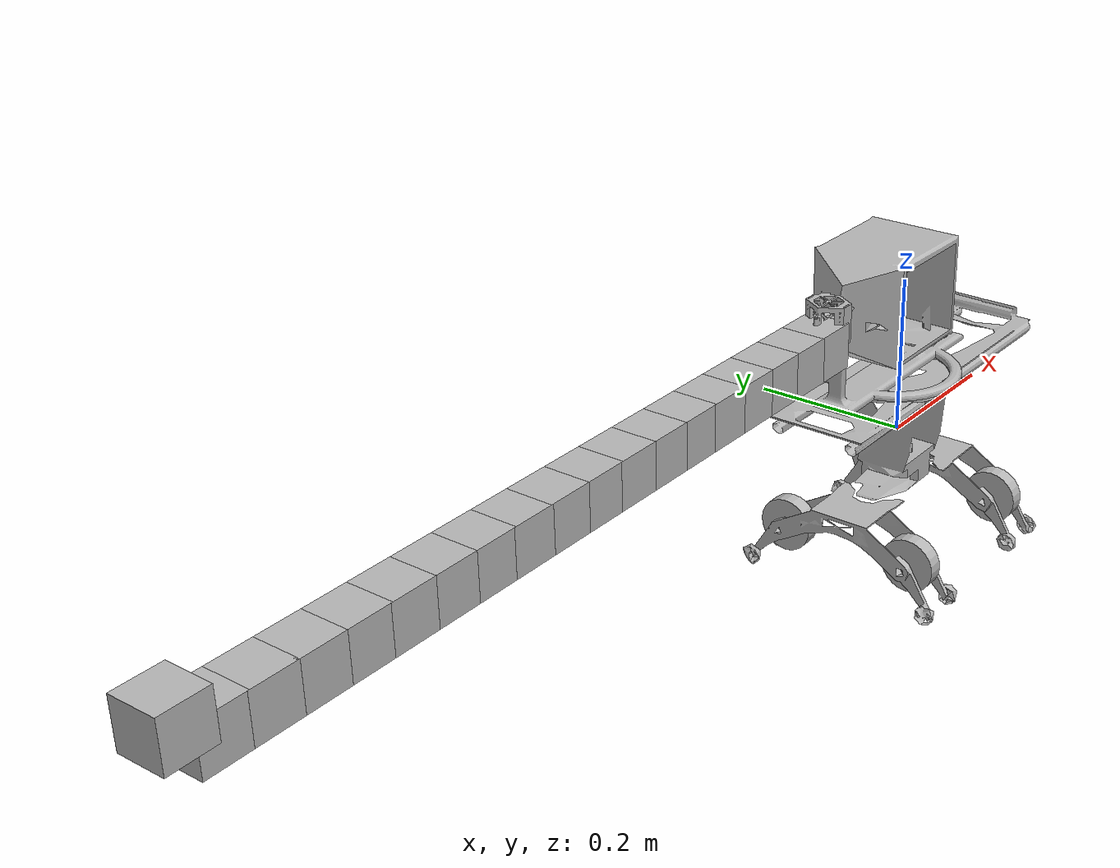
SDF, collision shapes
<sdf version='1.6'>
  <model name='prisma_snake'>
    <link name='uav_link'>
      <pose frame=''>0 0 0 0 -0 0</pose>
      <inertial>
        <pose frame=''>-9.6e-05 0 -0.031948 0 -0 0</pose>
        <mass>5.21</mass>
        <inertia>
          <ixx>0.144682</ixx>
          <ixy>0</ixy>
          <ixz>9.34741e-05</ixz>
          <iyy>0.153347</iyy>
          <iyz>-2.09336e-29</iyz>
          <izz>0.146665</izz>
        </inertia>
      </inertial>
      <collision name='uav_link_collision'>
        <pose frame=''>0 0 0 0 -0 0</pose>
        <geometry>
          <mesh>
            <scale>0.0001 0.0001 0.0001</scale>
            <uri>model://prisma_snake_support_gazebo/meshes/drone_no_prop_no_sup_cu.stl</uri>
          </mesh>
        </geometry>
      </collision>
      <collision name='uav_link_fixed_joint_lump__Rover_1_collision_1'>
        <pose frame=''>-0.3106 0 -0.2455 0 -0 0</pose>
        <geometry>
          <mesh>
            <scale>0.001 0.001 0.001</scale>
            <uri>model://prisma_snake_support_gazebo/meshes/Rover_1_cu.stl</uri>
          </mesh>
        </geometry>
      </collision>
      <collision name='uav_link_fixed_joint_lump__Rover_2_collision_2'>
        <pose frame=''>-0.3106 0 -0.2455 0 -0 0</pose>
        <geometry>
          <mesh>
            <scale>0.001 0.001 0.001</scale>
            <uri>model://prisma_snake_support_gazebo/meshes/Rover_2_cu.stl</uri>
          </mesh>
        </geometry>
      </collision>
      <collision name='uav_link_fixed_joint_lump__base_link_collision_3'>
        <pose frame=''>-0.05 0 0.155 3.14159 -0 1.57079</pose>
        <geometry>
          <mesh>
            <scale>1 1 1</scale>
            <uri>model://prisma_snake_support_gazebo/meshes/base_link.STL</uri>
          </mesh>
        </geometry>
      </collision>
      <visual name='uav_link_visual'>
        <pose frame=''>0 0 0 0 -0 0</pose>
        <geometry>
          <mesh>
            <scale>0.0001 0.0001 0.0001</scale>
            <uri>model://prisma_snake_support_gazebo/meshes/drone_no_prop_no_sup_cu.stl</uri>
          </mesh>
        </geometry>
      </visual>
      <visual name='uav_link_fixed_joint_lump__Rover_1_visual_1'>
        <pose frame=''>-0.3106 0 -0.2455 0 -0 0</pose>
        <geometry>
          <mesh>
            <scale>0.001 0.001 0.001</scale>
            <uri>model://prisma_snake_support_gazebo/meshes/Rover_1_cu.stl</uri>
          </mesh>
        </geometry>
      </visual>
      <visual name='uav_link_fixed_joint_lump__Rover_2_visual_2'>
        <pose frame=''>-0.3106 0 -0.2455 0 -0 0</pose>
        <geometry>
          <mesh>
            <scale>0.001 0.001 0.001</scale>
            <uri>model://prisma_snake_support_gazebo/meshes/Rover_2_cu.stl</uri>
          </mesh>
        </geometry>
      </visual>
      <visual name='uav_link_fixed_joint_lump__base_link_visual_3'>
        <pose frame=''>-0.05 0 0.155 3.14159 -0 1.57079</pose>
        <geometry>
          <mesh>
            <scale>1 1 1</scale>
            <uri>model://prisma_snake_support_gazebo/meshes/base_link.STL</uri>
          </mesh>
        </geometry>
      </visual>
    </link>
    <link name='Wheel_dx_1'>
      <pose frame=''>-0.084 0.087805 -0.113358 0 -0 0</pose>
      <inertial>
        <pose frame=''>-0.025 0 0 1.57 -0 1.57</pose>
        <mass>1.35</mass>
        <inertia>
          <ixx>0.0008</ixx>
          <ixy>0</ixy>
          <ixz>0</ixz>
          <iyy>0.0008</iyy>
          <iyz>0</iyz>
          <izz>0.0008</izz>
        </inertia>
      </inertial>
      <collision name='Wheel_dx_1_collision'>
        <pose frame=''>-0.025 0 0 1.57 -0 1.57</pose>
        <geometry>
          <cylinder>
            <length>0.02</length>
            <radius>0.035</radius>
          </cylinder>
        </geometry>
      </collision>
      <visual name='Wheel_dx_1_visual'>
        <pose frame=''>-0.025 0 0 1.57 -0 1.57</pose>
        <geometry>
          <cylinder>
            <length>0.02</length>
            <radius>0.035</radius>
          </cylinder>
        </geometry>
      </visual>
    </link>
    <joint name='JointWheel_F_dx' type='revolute'>
      <child>Wheel_dx_1</child>
      <parent>uav_link</parent>
      <axis>
        <xyz>-1 0 0</xyz>
        <limit>
          <lower>-1e+16</lower>
          <upper>1e+16</upper>
        </limit>
        <dynamics>
          <spring_reference>0</spring_reference>
          <spring_stiffness>0</spring_stiffness>
        </dynamics>
        <use_parent_model_frame>1</use_parent_model_frame>
      </axis>
    </joint>
    <link name='Wheel_sx_1'>
      <pose frame=''>-0.084 -0.087805 -0.113358 0 -0 0</pose>
      <inertial>
        <pose frame=''>-0.025 0 0 1.57 -0 1.57</pose>
        <mass>1.35</mass>
        <inertia>
          <ixx>0.0008</ixx>
          <ixy>0</ixy>
          <ixz>0</ixz>
          <iyy>0.0008</iyy>
          <iyz>0</iyz>
          <izz>0.0008</izz>
        </inertia>
      </inertial>
      <collision name='Wheel_sx_1_collision'>
        <pose frame=''>-0.025 0 0 1.57 -0 1.57</pose>
        <geometry>
          <cylinder>
            <length>0.02</length>
            <radius>0.035</radius>
          </cylinder>
        </geometry>
      </collision>
      <visual name='Wheel_sx_1_visual'>
        <pose frame=''>-0.025 0 0 1.57 -0 1.57</pose>
        <geometry>
          <cylinder>
            <length>0.02</length>
            <radius>0.035</radius>
          </cylinder>
        </geometry>
      </visual>
    </link>
    <joint name='JointWheel_F_sx' type='revolute'>
      <child>Wheel_sx_1</child>
      <parent>uav_link</parent>
      <axis>
        <xyz>-1 0 0</xyz>
        <limit>
          <lower>-1e+16</lower>
          <upper>1e+16</upper>
        </limit>
        <dynamics>
          <spring_reference>0</spring_reference>
          <spring_stiffness>0</spring_stiffness>
        </dynamics>
        <use_parent_model_frame>1</use_parent_model_frame>
      </axis>
    </joint>
    <link name='Wheel_dx_2'>
      <pose frame=''>0.1322 0.087805 -0.113358 0 -0 0</pose>
      <inertial>
        <pose frame=''>-0.025 0 0 0 -0 0</pose>
        <mass>1.35</mass>
        <inertia>
          <ixx>0.0008</ixx>
          <ixy>0</ixy>
          <ixz>0</ixz>
          <iyy>0.0008</iyy>
          <iyz>0</iyz>
          <izz>0.0008</izz>
        </inertia>
      </inertial>
      <collision name='Wheel_dx_2_collision'>
        <pose frame=''>-0.02 0 0 1.57 -0 1.57</pose>
        <geometry>
          <cylinder>
            <length>0.02</length>
            <radius>0.035</radius>
          </cylinder>
        </geometry>
      </collision>
      <visual name='Wheel_dx_2_visual'>
        <pose frame=''>-0.025 0 0 1.57 -0 1.57</pose>
        <geometry>
          <cylinder>
            <length>0.02</length>
            <radius>0.035</radius>
          </cylinder>
        </geometry>
      </visual>
    </link>
    <joint name='JointWheel_R_dx' type='revolute'>
      <child>Wheel_dx_2</child>
      <parent>uav_link</parent>
      <axis>
        <xyz>-1 0 0</xyz>
        <limit>
          <lower>-1e+16</lower>
          <upper>1e+16</upper>
        </limit>
        <dynamics>
          <spring_reference>0</spring_reference>
          <spring_stiffness>0</spring_stiffness>
        </dynamics>
        <use_parent_model_frame>1</use_parent_model_frame>
      </axis>
    </joint>
    <link name='Wheel_sx_2'>
      <pose frame=''>0.1322 -0.087805 -0.113358 0 -0 0</pose>
      <inertial>
        <pose frame=''>-0.025 0 0 1.57 -0 1.57</pose>
        <mass>1.35</mass>
        <inertia>
          <ixx>0.0008</ixx>
          <ixy>0</ixy>
          <ixz>0</ixz>
          <iyy>0.0008</iyy>
          <iyz>0</iyz>
          <izz>0.0008</izz>
        </inertia>
      </inertial>
      <collision name='Wheel_sx_2_collision'>
        <pose frame=''>-0.025 0 0 1.57 -0 1.57</pose>
        <geometry>
          <cylinder>
            <length>0.02</length>
            <radius>0.035</radius>
          </cylinder>
        </geometry>
      </collision>
      <visual name='Wheel_sx_2_visual'>
        <pose frame=''>-0.025 0 0 1.57 -0 1.57</pose>
        <geometry>
          <cylinder>
            <length>0.02</length>
            <radius>0.035</radius>
          </cylinder>
        </geometry>
      </visual>
    </link>
    <joint name='JointWheel_R_sx' type='revolute'>
      <child>Wheel_sx_2</child>
      <parent>uav_link</parent>
      <axis>
        <xyz>-1 0 0</xyz>
        <limit>
          <lower>-1e+16</lower>
          <upper>1e+16</upper>
        </limit>
        <dynamics>
          <spring_reference>0</spring_reference>
          <spring_stiffness>0</spring_stiffness>
        </dynamics>
        <use_parent_model_frame>1</use_parent_model_frame>
      </axis>
    </joint>
    <link name='LFrame'>
      <pose frame=''>-0.010013 0.007728 0.155 1.5708 3e-06 3.14159</pose>
      <inertial>
        <pose frame=''>-0.024847 -0.056361 0.01 0 -0 0</pose>
        <mass>0.0518024</mass>
        <inertia>
          <ixx>0</ixx>
          <ixy>0</ixy>
          <ixz>0</ixz>
          <iyy>0</iyy>
          <iyz>0</iyz>
          <izz>0</izz>
        </inertia>
      </inertial>
      <collision name='LFrame_collision'>
        <pose frame=''>0 0 0 0 -0 0</pose>
        <geometry>
          <mesh>
            <scale>1 1 1</scale>
            <uri>model://prisma_snake_support_gazebo/meshes/LFrame.STL</uri>
          </mesh>
        </geometry>
      </collision>
      <visual name='LFrame_visual'>
        <pose frame=''>0 0 0 0 -0 0</pose>
        <geometry>
          <mesh>
            <scale>1 1 1</scale>
            <uri>model://prisma_snake_support_gazebo/meshes/LFrame.STL</uri>
          </mesh>
        </geometry>
      </visual>
    </link>
    <joint name='JFrame' type='revolute'>
      <child>LFrame</child>
      <parent>uav_link</parent>
      <axis>
        <xyz>-3e-06 0 1</xyz>
        <limit>
          <lower>-1e+16</lower>
          <upper>1e+16</upper>
        </limit>
        <dynamics>
          <damping>0</damping>
          <friction>0.05</friction>
          <spring_reference>0</spring_reference>
          <spring_stiffness>0</spring_stiffness>
        </dynamics>
        <use_parent_model_frame>1</use_parent_model_frame>
      </axis>
    </joint>
    <link name='LMotor'>
      <pose frame=''>-0.010013 0.007728 0.155 -1.57079 0 -1.5708</pose>
      <inertial>
        <pose frame=''>-0.009237 -0.040492 -0.048654 0 -0 0</pose>
        <mass>0.275028</mass>
        <inertia>
          <ixx>0.00125021</ixx>
          <ixy>1.24953e-06</ixy>
          <ixz>2.19849e-05</ixz>
          <iyy>0.00125134</iyy>
          <iyz>-1.41752e-05</iyz>
          <izz>0.00100274</izz>
        </inertia>
      </inertial>
      <collision name='LMotor_collision'>
        <pose frame=''>0 0 0 0 -0 0</pose>
        <geometry>
          <mesh>
            <scale>1 1 1</scale>
            <uri>model://prisma_snake_support_gazebo/meshes/LMotor_cu.stl</uri>
          </mesh>
        </geometry>
      </collision>
      <collision name='LMotor_fixed_joint_lump__L1_collision_1'>
        <pose frame=''>0 -0.022448 -0.127545 3.14159 1.57079 3e-06</pose>
        <geometry>
          <mesh>
            <scale>1 1 1</scale>
            <uri>model://prisma_snake_support_gazebo/meshes/L1.STL</uri>
          </mesh>
        </geometry>
      </collision>
      <visual name='LMotor_visual'>
        <pose frame=''>0 0 0 0 -0 0</pose>
        <geometry>
          <mesh>
            <scale>1 1 1</scale>
            <uri>model://prisma_snake_support_gazebo/meshes/LMotor_cu.stl</uri>
          </mesh>
        </geometry>
      </visual>
      <visual name='LMotor_fixed_joint_lump__L1_visual_1'>
        <pose frame=''>0 -0.022448 -0.127545 3.14159 1.57079 3e-06</pose>
        <geometry>
          <mesh>
            <scale>1 1 1</scale>
            <uri>model://prisma_snake_support_gazebo/meshes/L1.STL</uri>
          </mesh>
        </geometry>
      </visual>
    </link>
    <joint name='JMotor' type='revolute'>
      <child>LMotor</child>
      <parent>LFrame</parent>
      <axis>
        <xyz>1 -7e-06 2e-06</xyz>
        <limit>
          <lower>-1.5708</lower>
          <upper>1.5708</upper>
          <effort>10</effort>
          <velocity>1.57</velocity>
        </limit>
        <dynamics>
          <damping>0</damping>
          <friction>0.05</friction>
          <spring_reference>0</spring_reference>
          <spring_stiffness>0</spring_stiffness>
        </dynamics>
        <use_parent_model_frame>1</use_parent_model_frame>
      </axis>
    </joint>
    <link name='L2'>
      <pose frame=''>-0.190058 0.007729 0.177448 1.57079 2e-06 3.14159</pose>
      <inertial>
        <pose frame=''>0.0259 0.024 0 0 -0 0</pose>
        <mass>0.02</mass>
        <inertia>
          <ixx>0.0006</ixx>
          <ixy>0</ixy>
          <ixz>0</ixz>
          <iyy>0.0006</iyy>
          <iyz>0</iyz>
          <izz>0.0006</izz>
        </inertia>
      </inertial>
      <collision name='L2_collision'>
        <pose frame=''>0 0 0 0 -0 0</pose>
        <geometry>
          <box>
            <size>0.055 0.055 0.055</size>
          </box>
        </geometry>
      </collision>
      <visual name='L2_visual'>
        <pose frame=''>0 0 0 0 -0 0</pose>
        <geometry>
          <mesh>
            <scale>1 1 1</scale>
            <uri>model://prisma_snake_support_gazebo/meshes/L2_cu.stl</uri>
          </mesh>
        </geometry>
      </visual>
    </link>
    <joint name='J2' type='revolute'>
      <child>L2</child>
      <parent>LMotor</parent>
      <axis>
        <xyz>-2e-06 -3e-06 1</xyz>
        <limit>
          <lower>-1.04856</lower>
          <upper>1.04584</upper>
          <effort>10</effort>
          <velocity>1.57</velocity>
        </limit>
        <dynamics>
          <damping>0</damping>
          <friction>0.025</friction>
          <spring_reference>0</spring_reference>
          <spring_stiffness>0</spring_stiffness>
        </dynamics>
        <use_parent_model_frame>1</use_parent_model_frame>
      </axis>
    </joint>
    <link name='L3'>
      <pose frame=''>-0.242558 0.007729 0.177447 1.57079 2e-06 3.14159</pose>
      <inertial>
        <pose frame=''>0.0259 0.024 0 0 -0 0</pose>
        <mass>0.02</mass>
        <inertia>
          <ixx>0.0006</ixx>
          <ixy>0</ixy>
          <ixz>0</ixz>
          <iyy>0.0006</iyy>
          <iyz>0</iyz>
          <izz>0.0006</izz>
        </inertia>
      </inertial>
      <collision name='L3_collision'>
        <pose frame=''>0 0 0 0 -0 0</pose>
        <geometry>
          <box>
            <size>0.055 0.055 0.055</size>
          </box>
        </geometry>
      </collision>
      <visual name='L3_visual'>
        <pose frame=''>0 0 0 0 -0 0</pose>
        <geometry>
          <mesh>
            <scale>1 1 1</scale>
            <uri>model://prisma_snake_support_gazebo/meshes/L2_cu.stl</uri>
          </mesh>
        </geometry>
      </visual>
    </link>
    <joint name='J3' type='revolute'>
      <child>L3</child>
      <parent>L2</parent>
      <axis>
        <xyz>-2e-06 -3e-06 1</xyz>
        <limit>
          <lower>-1.03792</lower>
          <upper>1.05647</upper>
          <effort>10</effort>
          <velocity>1.57</velocity>
        </limit>
        <dynamics>
          <damping>0</damping>
          <friction>0.025</friction>
          <spring_reference>0</spring_reference>
          <spring_stiffness>0</spring_stiffness>
        </dynamics>
        <use_parent_model_frame>1</use_parent_model_frame>
      </axis>
    </joint>
    <link name='L4'>
      <pose frame=''>-0.295058 0.00773 0.177447 1.57079 2e-06 3.14159</pose>
      <inertial>
        <pose frame=''>0.0259 0.024 0 0 -0 0</pose>
        <mass>0.02</mass>
        <inertia>
          <ixx>0.0006</ixx>
          <ixy>0</ixy>
          <ixz>0</ixz>
          <iyy>0.0006</iyy>
          <iyz>0</iyz>
          <izz>0.0006</izz>
        </inertia>
      </inertial>
      <collision name='L4_collision'>
        <pose frame=''>0 0 0 0 -0 0</pose>
        <geometry>
          <box>
            <size>0.055 0.055 0.055</size>
          </box>
        </geometry>
      </collision>
      <visual name='L4_visual'>
        <pose frame=''>0 0 0 0 -0 0</pose>
        <geometry>
          <mesh>
            <scale>1 1 1</scale>
            <uri>model://prisma_snake_support_gazebo/meshes/L2_cu.stl</uri>
          </mesh>
        </geometry>
      </visual>
    </link>
    <joint name='J4' type='revolute'>
      <child>L4</child>
      <parent>L3</parent>
      <axis>
        <xyz>-2e-06 -3e-06 1</xyz>
        <limit>
          <lower>-1.04856</lower>
          <upper>1.04584</upper>
          <effort>10</effort>
          <velocity>1.57</velocity>
        </limit>
        <dynamics>
          <damping>0</damping>
          <friction>0.025</friction>
          <spring_reference>0</spring_reference>
          <spring_stiffness>0</spring_stiffness>
        </dynamics>
        <use_parent_model_frame>1</use_parent_model_frame>
      </axis>
    </joint>
    <link name='L5'>
      <pose frame=''>-0.347558 0.00773 0.177447 1.57079 2e-06 3.14159</pose>
      <inertial>
        <pose frame=''>0.0259 0.024 0 0 -0 0</pose>
        <mass>0.02</mass>
        <inertia>
          <ixx>0.0006</ixx>
          <ixy>0</ixy>
          <ixz>0</ixz>
          <iyy>0.0006</iyy>
          <iyz>0</iyz>
          <izz>0.0006</izz>
        </inertia>
      </inertial>
      <collision name='L5_collision'>
        <pose frame=''>0 0 0 0 -0 0</pose>
        <geometry>
          <box>
            <size>0.055 0.055 0.055</size>
          </box>
        </geometry>
      </collision>
      <visual name='L5_visual'>
        <pose frame=''>0 0 0 0 -0 0</pose>
        <geometry>
          <mesh>
            <scale>1 1 1</scale>
            <uri>model://prisma_snake_support_gazebo/meshes/L2_cu.stl</uri>
          </mesh>
        </geometry>
      </visual>
    </link>
    <joint name='J5' type='revolute'>
      <child>L5</child>
      <parent>L4</parent>
      <axis>
        <xyz>-2e-06 -3e-06 1</xyz>
        <limit>
          <lower>-1.04698</lower>
          <upper>1.04741</upper>
          <effort>10</effort>
          <velocity>1.57</velocity>
        </limit>
        <dynamics>
          <damping>0</damping>
          <friction>0.025</friction>
          <spring_reference>0</spring_reference>
          <spring_stiffness>0</spring_stiffness>
        </dynamics>
        <use_parent_model_frame>1</use_parent_model_frame>
      </axis>
    </joint>
    <link name='L6'>
      <pose frame=''>-0.400058 0.00773 0.177447 1.57079 2e-06 3.14159</pose>
      <inertial>
        <pose frame=''>0.0259 0.024 0 0 -0 0</pose>
        <mass>0.02</mass>
        <inertia>
          <ixx>0.0006</ixx>
          <ixy>0</ixy>
          <ixz>0</ixz>
          <iyy>0.0006</iyy>
          <iyz>0</iyz>
          <izz>0.0006</izz>
        </inertia>
      </inertial>
      <collision name='L6_collision'>
        <pose frame=''>0 0 0 0 -0 0</pose>
        <geometry>
          <box>
            <size>0.055 0.055 0.055</size>
          </box>
        </geometry>
      </collision>
      <visual name='L6_visual'>
        <pose frame=''>0 0 0 0 -0 0</pose>
        <geometry>
          <mesh>
            <scale>1 1 1</scale>
            <uri>model://prisma_snake_support_gazebo/meshes/L2_cu.stl</uri>
          </mesh>
        </geometry>
      </visual>
    </link>
    <joint name='J6' type='revolute'>
      <child>L6</child>
      <parent>L5</parent>
      <axis>
        <xyz>-2e-06 -3e-06 1</xyz>
        <limit>
          <lower>-1.04722</lower>
          <upper>1.04718</upper>
          <effort>10</effort>
          <velocity>1.57</velocity>
        </limit>
        <dynamics>
          <damping>0</damping>
          <friction>0.025</friction>
          <spring_reference>0</spring_reference>
          <spring_stiffness>0</spring_stiffness>
        </dynamics>
        <use_parent_model_frame>1</use_parent_model_frame>
      </axis>
    </joint>
    <link name='L7'>
      <pose frame=''>-0.452558 0.007731 0.177447 1.57079 2e-06 3.14159</pose>
      <inertial>
        <pose frame=''>0.0259 0.024 0 0 -0 0</pose>
        <mass>0.02</mass>
        <inertia>
          <ixx>0.0006</ixx>
          <ixy>0</ixy>
          <ixz>0</ixz>
          <iyy>0.0006</iyy>
          <iyz>0</iyz>
          <izz>0.0006</izz>
        </inertia>
      </inertial>
      <collision name='L7_collision'>
        <pose frame=''>0 0 0 0 -0 0</pose>
        <geometry>
          <box>
            <size>0.055 0.055 0.055</size>
          </box>
        </geometry>
      </collision>
      <visual name='L7_visual'>
        <pose frame=''>0 0 0 0 -0 0</pose>
        <geometry>
          <mesh>
            <scale>1 1 1</scale>
            <uri>model://prisma_snake_support_gazebo/meshes/L2_cu.stl</uri>
          </mesh>
        </geometry>
      </visual>
    </link>
    <joint name='J7' type='revolute'>
      <child>L7</child>
      <parent>L6</parent>
      <axis>
        <xyz>-2e-06 -3e-06 1</xyz>
        <limit>
          <lower>-1.0472</lower>
          <upper>1.0472</upper>
          <effort>10</effort>
          <velocity>1.57</velocity>
        </limit>
        <dynamics>
          <damping>0</damping>
          <friction>0.025</friction>
          <spring_reference>0</spring_reference>
          <spring_stiffness>0</spring_stiffness>
        </dynamics>
        <use_parent_model_frame>1</use_parent_model_frame>
      </axis>
    </joint>
    <link name='L8'>
      <pose frame=''>-0.505058 0.007731 0.177447 1.57079 2e-06 3.14159</pose>
      <inertial>
        <pose frame=''>0.0259 0.024 0 0 -0 0</pose>
        <mass>0.02</mass>
        <inertia>
          <ixx>0.0006</ixx>
          <ixy>0</ixy>
          <ixz>0</ixz>
          <iyy>0.0006</iyy>
          <iyz>0</iyz>
          <izz>0.0006</izz>
        </inertia>
      </inertial>
      <collision name='L8_collision'>
        <pose frame=''>0 0 0 0 -0 0</pose>
        <geometry>
          <box>
            <size>0.055 0.055 0.055</size>
          </box>
        </geometry>
      </collision>
      <visual name='L8_visual'>
        <pose frame=''>0 0 0 0 -0 0</pose>
        <geometry>
          <mesh>
            <scale>1 1 1</scale>
            <uri>model://prisma_snake_support_gazebo/meshes/L2_cu.stl</uri>
          </mesh>
        </geometry>
      </visual>
    </link>
    <joint name='J8' type='revolute'>
      <child>L8</child>
      <parent>L7</parent>
      <axis>
        <xyz>-2e-06 -3e-06 1</xyz>
        <limit>
          <lower>-1.0472</lower>
          <upper>1.0472</upper>
          <effort>10</effort>
          <velocity>1.57</velocity>
        </limit>
        <dynamics>
          <damping>0</damping>
          <friction>0.025</friction>
          <spring_reference>0</spring_reference>
          <spring_stiffness>0</spring_stiffness>
        </dynamics>
        <use_parent_model_frame>1</use_parent_model_frame>
      </axis>
    </joint>
    <link name='L9'>
      <pose frame=''>-0.557558 0.007731 0.177447 1.57079 2e-06 3.14159</pose>
      <inertial>
        <pose frame=''>0.0259 0.024 0 0 -0 0</pose>
        <mass>0.02</mass>
        <inertia>
          <ixx>0.0006</ixx>
          <ixy>0</ixy>
          <ixz>0</ixz>
          <iyy>0.0006</iyy>
          <iyz>0</iyz>
          <izz>0.0006</izz>
        </inertia>
      </inertial>
      <collision name='L9_collision'>
        <pose frame=''>0 0 0 0 -0 0</pose>
        <geometry>
          <box>
            <size>0.055 0.055 0.055</size>
          </box>
        </geometry>
      </collision>
      <visual name='L9_visual'>
        <pose frame=''>0 0 0 0 -0 0</pose>
        <geometry>
          <mesh>
            <scale>1 1 1</scale>
            <uri>model://prisma_snake_support_gazebo/meshes/L2_cu.stl</uri>
          </mesh>
        </geometry>
      </visual>
    </link>
    <joint name='J9' type='revolute'>
      <child>L9</child>
      <parent>L8</parent>
      <axis>
        <xyz>-2e-06 -3e-06 1</xyz>
        <limit>
          <lower>-1.0472</lower>
          <upper>1.0472</upper>
          <effort>10</effort>
          <velocity>1.57</velocity>
        </limit>
        <dynamics>
          <damping>0</damping>
          <friction>0.025</friction>
          <spring_reference>0</spring_reference>
          <spring_stiffness>0</spring_stiffness>
        </dynamics>
        <use_parent_model_frame>1</use_parent_model_frame>
      </axis>
    </joint>
    <link name='L10'>
      <pose frame=''>-0.610058 0.007732 0.177447 1.57079 2e-06 3.14159</pose>
      <inertial>
        <pose frame=''>0.0259 0.024 0 0 -0 0</pose>
        <mass>0.02</mass>
        <inertia>
          <ixx>0.0006</ixx>
          <ixy>0</ixy>
          <ixz>0</ixz>
          <iyy>0.0006</iyy>
          <iyz>0</iyz>
          <izz>0.0006</izz>
        </inertia>
      </inertial>
      <collision name='L10_collision'>
        <pose frame=''>0 0 0 0 -0 0</pose>
        <geometry>
          <box>
            <size>0.055 0.055 0.055</size>
          </box>
        </geometry>
      </collision>
      <visual name='L10_visual'>
        <pose frame=''>0 0 0 0 -0 0</pose>
        <geometry>
          <mesh>
            <scale>1 1 1</scale>
            <uri>model://prisma_snake_support_gazebo/meshes/L2_cu.stl</uri>
          </mesh>
        </geometry>
      </visual>
    </link>
    <joint name='J10' type='revolute'>
      <child>L10</child>
      <parent>L9</parent>
      <axis>
        <xyz>-2e-06 -3e-06 1</xyz>
        <limit>
          <lower>-1.0472</lower>
          <upper>1.0472</upper>
          <effort>10</effort>
          <velocity>1.57</velocity>
        </limit>
        <dynamics>
          <damping>0</damping>
          <friction>0.025</friction>
          <spring_reference>0</spring_reference>
          <spring_stiffness>0</spring_stiffness>
        </dynamics>
        <use_parent_model_frame>1</use_parent_model_frame>
      </axis>
    </joint>
    <link name='L11'>
      <pose frame=''>-0.662558 0.007732 0.177447 1.57079 2e-06 3.14159</pose>
      <inertial>
        <pose frame=''>0.0259 0.024 0 0 -0 0</pose>
        <mass>0.02</mass>
        <inertia>
          <ixx>0.0006</ixx>
          <ixy>0</ixy>
          <ixz>0</ixz>
          <iyy>0.0006</iyy>
          <iyz>0</iyz>
          <izz>0.0006</izz>
        </inertia>
      </inertial>
      <collision name='L11_collision'>
        <pose frame=''>0 0 0 0 -0 0</pose>
        <geometry>
          <box>
            <size>0.055 0.055 0.055</size>
          </box>
        </geometry>
      </collision>
      <visual name='L11_visual'>
        <pose frame=''>0 0 0 0 -0 0</pose>
        <geometry>
          <mesh>
            <scale>1 1 1</scale>
            <uri>model://prisma_snake_support_gazebo/meshes/L2_cu.stl</uri>
          </mesh>
        </geometry>
      </visual>
    </link>
    <joint name='J11' type='revolute'>
      <child>L11</child>
      <parent>L10</parent>
      <axis>
        <xyz>-2e-06 -3e-06 1</xyz>
        <limit>
          <lower>-1.0472</lower>
          <upper>1.0472</upper>
          <effort>10</effort>
          <velocity>1.57</velocity>
        </limit>
        <dynamics>
          <damping>0</damping>
          <friction>0.025</friction>
          <spring_reference>0</spring_reference>
          <spring_stiffness>0</spring_stiffness>
        </dynamics>
        <use_parent_model_frame>1</use_parent_model_frame>
      </axis>
    </joint>
    <link name='L12'>
      <pose frame=''>-0.715058 0.007732 0.177446 1.57079 2e-06 3.14159</pose>
      <inertial>
        <pose frame=''>0.0259 0.024 0 0 -0 0</pose>
        <mass>0.02</mass>
        <inertia>
          <ixx>0.0006</ixx>
          <ixy>0</ixy>
          <ixz>0</ixz>
          <iyy>0.0006</iyy>
          <iyz>0</iyz>
          <izz>0.0006</izz>
        </inertia>
      </inertial>
      <collision name='L12_collision'>
        <pose frame=''>0 0 0 0 -0 0</pose>
        <geometry>
          <box>
            <size>0.055 0.055 0.055</size>
          </box>
        </geometry>
      </collision>
      <visual name='L12_visual'>
        <pose frame=''>0 0 0 0 -0 0</pose>
        <geometry>
          <mesh>
            <scale>1 1 1</scale>
            <uri>model://prisma_snake_support_gazebo/meshes/L2_cu.stl</uri>
          </mesh>
        </geometry>
      </visual>
    </link>
    <joint name='J12' type='revolute'>
      <child>L12</child>
      <parent>L11</parent>
      <axis>
        <xyz>-2e-06 -3e-06 1</xyz>
        <limit>
          <lower>-1.0472</lower>
          <upper>1.0472</upper>
          <effort>10</effort>
          <velocity>1.57</velocity>
        </limit>
        <dynamics>
          <damping>0</damping>
          <friction>0.025</friction>
          <spring_reference>0</spring_reference>
          <spring_stiffness>0</spring_stiffness>
        </dynamics>
        <use_parent_model_frame>1</use_parent_model_frame>
      </axis>
    </joint>
    <link name='L13'>
      <pose frame=''>-0.767558 0.007733 0.177446 1.57079 2e-06 3.14159</pose>
      <inertial>
        <pose frame=''>0.0259 0.024 0 0 -0 0</pose>
        <mass>0.02</mass>
        <inertia>
          <ixx>0.0006</ixx>
          <ixy>0</ixy>
          <ixz>0</ixz>
          <iyy>0.0006</iyy>
          <iyz>0</iyz>
          <izz>0.0006</izz>
        </inertia>
      </inertial>
      <collision name='L13_collision'>
        <pose frame=''>0 0 0 0 -0 0</pose>
        <geometry>
          <box>
            <size>0.055 0.055 0.055</size>
          </box>
        </geometry>
      </collision>
      <visual name='L13_visual'>
        <pose frame=''>0 0 0 0 -0 0</pose>
        <geometry>
          <mesh>
            <scale>1 1 1</scale>
            <uri>model://prisma_snake_support_gazebo/meshes/L2_cu.stl</uri>
          </mesh>
        </geometry>
      </visual>
    </link>
    <joint name='J13' type='revolute'>
      <child>L13</child>
      <parent>L12</parent>
      <axis>
        <xyz>-2e-06 -3e-06 1</xyz>
        <limit>
          <lower>-1.0472</lower>
          <upper>1.0472</upper>
          <effort>10</effort>
          <velocity>1.57</velocity>
        </limit>
        <dynamics>
          <damping>0</damping>
          <friction>0.025</friction>
          <spring_reference>0</spring_reference>
          <spring_stiffness>0</spring_stiffness>
        </dynamics>
        <use_parent_model_frame>1</use_parent_model_frame>
      </axis>
    </joint>
    <link name='L14'>
      <pose frame=''>-0.820058 0.007733 0.177446 1.57079 2e-06 3.14159</pose>
      <inertial>
        <pose frame=''>0.0259 0.024 0 0 -0 0</pose>
        <mass>0.02</mass>
        <inertia>
          <ixx>0.0006</ixx>
          <ixy>0</ixy>
          <ixz>0</ixz>
          <iyy>0.0006</iyy>
          <iyz>0</iyz>
          <izz>0.0006</izz>
        </inertia>
      </inertial>
      <collision name='L14_collision'>
        <pose frame=''>0 0 0 0 -0 0</pose>
        <geometry>
          <box>
            <size>0.055 0.055 0.055</size>
          </box>
        </geometry>
      </collision>
      <visual name='L14_visual'>
        <pose frame=''>0 0 0 0 -0 0</pose>
        <geometry>
          <mesh>
            <scale>1 1 1</scale>
            <uri>model://prisma_snake_support_gazebo/meshes/L2_cu.stl</uri>
          </mesh>
        </geometry>
      </visual>
    </link>
    <joint name='J14' type='revolute'>
      <child>L14</child>
      <parent>L13</parent>
      <axis>
        <xyz>-2e-06 -3e-06 1</xyz>
        <limit>
          <lower>-1.0472</lower>
          <upper>1.0472</upper>
          <effort>10</effort>
          <velocity>1.57</velocity>
        </limit>
        <dynamics>
          <damping>0</damping>
          <friction>0.025</friction>
          <spring_reference>0</spring_reference>
          <spring_stiffness>0</spring_stiffness>
        </dynamics>
        <use_parent_model_frame>1</use_parent_model_frame>
      </axis>
    </joint>
    <link name='L15'>
      <pose frame=''>-0.872558 0.007733 0.177446 1.57079 2e-06 3.14159</pose>
      <inertial>
        <pose frame=''>0.0259 0.024 0 0 -0 0</pose>
        <mass>0.02</mass>
        <inertia>
          <ixx>0.0006</ixx>
          <ixy>0</ixy>
          <ixz>0</ixz>
          <iyy>0.0006</iyy>
          <iyz>0</iyz>
          <izz>0.0006</izz>
        </inertia>
      </inertial>
      <collision name='L15_collision'>
        <pose frame=''>0 0 0 0 -0 0</pose>
        <geometry>
          <box>
            <size>0.055 0.055 0.055</size>
          </box>
        </geometry>
      </collision>
      <visual name='L15_visual'>
        <pose frame=''>0 0 0 0 -0 0</pose>
        <geometry>
          <mesh>
            <scale>1 1 1</scale>
            <uri>model://prisma_snake_support_gazebo/meshes/L2_cu.stl</uri>
          </mesh>
        </geometry>
      </visual>
    </link>
    <joint name='J15' type='revolute'>
      <child>L15</child>
      <parent>L14</parent>
      <axis>
        <xyz>-2e-06 -3e-06 1</xyz>
        <limit>
          <lower>-1.0472</lower>
          <upper>1.0472</upper>
          <effort>10</effort>
          <velocity>1.57</velocity>
        </limit>
        <dynamics>
          <damping>0</damping>
          <friction>0.025</friction>
          <spring_reference>0</spring_reference>
          <spring_stiffness>0</spring_stiffness>
        </dynamics>
        <use_parent_model_frame>1</use_parent_model_frame>
      </axis>
    </joint>
    <link name='L16'>
      <pose frame=''>-0.925058 0.007734 0.177446 1.57079 2e-06 3.14159</pose>
      <inertial>
        <pose frame=''>0.0259 0.024 0 0 -0 0</pose>
        <mass>0.02</mass>
        <inertia>
          <ixx>0.0006</ixx>
          <ixy>0</ixy>
          <ixz>0</ixz>
          <iyy>0.0006</iyy>
          <iyz>0</iyz>
          <izz>0.0006</izz>
        </inertia>
      </inertial>
      <collision name='L16_collision'>
        <pose frame=''>0 0 0 0 -0 0</pose>
        <geometry>
          <box>
            <size>0.055 0.055 0.055</size>
          </box>
        </geometry>
      </collision>
      <visual name='L16_visual'>
        <pose frame=''>0 0 0 0 -0 0</pose>
        <geometry>
          <mesh>
            <scale>1 1 1</scale>
            <uri>model://prisma_snake_support_gazebo/meshes/L2_cu.stl</uri>
          </mesh>
        </geometry>
      </visual>
    </link>
    <joint name='J16' type='revolute'>
      <child>L16</child>
      <parent>L15</parent>
      <axis>
        <xyz>-2e-06 -3e-06 1</xyz>
        <limit>
          <lower>-1.0472</lower>
          <upper>1.0472</upper>
          <effort>10</effort>
          <velocity>1.57</velocity>
        </limit>
        <dynamics>
          <damping>0</damping>
          <friction>0.025</friction>
          <spring_reference>0</spring_reference>
          <spring_stiffness>0</spring_stiffness>
        </dynamics>
        <use_parent_model_frame>1</use_parent_model_frame>
      </axis>
    </joint>
    <link name='L17'>
      <pose frame=''>-0.977558 0.007734 0.177446 1.57079 2e-06 3.14159</pose>
      <inertial>
        <pose frame=''>0.0259 0.024 0 0 -0 0</pose>
        <mass>0.02</mass>
        <inertia>
          <ixx>0.0006</ixx>
          <ixy>0</ixy>
          <ixz>0</ixz>
          <iyy>0.0006</iyy>
          <iyz>0</iyz>
          <izz>0.0006</izz>
        </inertia>
      </inertial>
      <collision name='L17_collision'>
        <pose frame=''>0 0 0 0 -0 0</pose>
        <geometry>
          <box>
            <size>0.055 0.055 0.055</size>
          </box>
        </geometry>
      </collision>
      <visual name='L17_visual'>
        <pose frame=''>0 0 0 0 -0 0</pose>
        <geometry>
          <mesh>
            <scale>1 1 1</scale>
            <uri>model://prisma_snake_support_gazebo/meshes/L2_cu.stl</uri>
          </mesh>
        </geometry>
      </visual>
    </link>
    <joint name='J17' type='revolute'>
      <child>L17</child>
      <parent>L16</parent>
      <axis>
        <xyz>-2e-06 -3e-06 1</xyz>
        <limit>
          <lower>-1.0472</lower>
          <upper>1.0472</upper>
          <effort>10</effort>
          <velocity>1.57</velocity>
        </limit>
        <dynamics>
          <damping>0</damping>
          <friction>0.025</friction>
          <spring_reference>0</spring_reference>
          <spring_stiffness>0</spring_stiffness>
        </dynamics>
        <use_parent_model_frame>1</use_parent_model_frame>
      </axis>
    </joint>
    <link name='L18'>
      <pose frame=''>-1.03006 0.007734 0.177446 1.57079 2e-06 3.14159</pose>
      <inertial>
        <pose frame=''>0.0259 0.024 0 0 -0 0</pose>
        <mass>0.02</mass>
        <inertia>
          <ixx>0.0006</ixx>
          <ixy>0</ixy>
          <ixz>0</ixz>
          <iyy>0.0006</iyy>
          <iyz>0</iyz>
          <izz>0.0006</izz>
        </inertia>
      </inertial>
      <collision name='L18_collision'>
        <pose frame=''>0 0 0 0 -0 0</pose>
        <geometry>
          <box>
            <size>0.055 0.055 0.055</size>
          </box>
        </geometry>
      </collision>
      <visual name='L18_visual'>
        <pose frame=''>0 0 0 0 -0 0</pose>
        <geometry>
          <mesh>
            <scale>1 1 1</scale>
            <uri>model://prisma_snake_support_gazebo/meshes/L2_cu.stl</uri>
          </mesh>
        </geometry>
      </visual>
    </link>
    <joint name='J18' type='revolute'>
      <child>L18</child>
      <parent>L17</parent>
      <axis>
        <xyz>-2e-06 -3e-06 1</xyz>
        <limit>
          <lower>-1.0472</lower>
          <upper>1.0472</upper>
          <effort>10</effort>
          <velocity>1.57</velocity>
        </limit>
        <dynamics>
          <damping>0</damping>
          <friction>0.025</friction>
          <spring_reference>0</spring_reference>
          <spring_stiffness>0</spring_stiffness>
        </dynamics>
        <use_parent_model_frame>1</use_parent_model_frame>
      </axis>
    </joint>
    <link name='L20'>
      <pose frame=''>-1.08256 0.007735 0.177446 1.57079 -3e-06 1.57079</pose>
      <inertial>
        <pose frame=''>0.0259 0.024 0 0 -0 0</pose>
        <mass>0.02</mass>
        <inertia>
          <ixx>0.0006</ixx>
          <ixy>0</ixy>
          <ixz>0</ixz>
          <iyy>0.0006</iyy>
          <iyz>0</iyz>
          <izz>0.0006</izz>
        </inertia>
      </inertial>
      <collision name='L20_collision'>
        <pose frame=''>0 0 0 0 -0 0</pose>
        <geometry>
          <box>
            <size>0.055 0.055 0.055</size>
          </box>
        </geometry>
      </collision>
      <visual name='L20_visual'>
        <pose frame=''>0 0 0 0 -0 0</pose>
        <geometry>
          <mesh>
            <scale>1 1 1</scale>
            <uri>model://prisma_snake_support_gazebo/meshes/L20.STL</uri>
          </mesh>
        </geometry>
      </visual>
    </link>
    <joint name='J20' type='revolute'>
      <child>L20</child>
      <parent>L18</parent>
      <axis>
        <xyz>-2e-06 -3e-06 1</xyz>
        <limit>
          <lower>-1.0773</lower>
          <upper>1.01709</upper>
          <effort>10</effort>
          <velocity>1.57</velocity>
        </limit>
        <dynamics>
          <damping>0</damping>
          <friction>0.025</friction>
          <spring_reference>0</spring_reference>
          <spring_stiffness>0</spring_stiffness>
        </dynamics>
        <use_parent_model_frame>1</use_parent_model_frame>
      </axis>
    </joint>
    <link name='Probe'>
      <pose frame=''>-1.11556 0.007735 0.201446 1.57079 -3e-06 1.57079</pose>
      <inertial>
        <pose frame=''>0 0 0 0 -0 0</pose>
        <mass>0.02</mass>
        <inertia>
          <ixx>0.0006</ixx>
          <ixy>0</ixy>
          <ixz>0</ixz>
          <iyy>0.0006</iyy>
          <iyz>0</iyz>
          <izz>0.0006</izz>
        </inertia>
      </inertial>
      <collision name='Probe_collision'>
        <pose frame=''>0 0 0 0 -0 0</pose>
        <geometry>
          <box>
            <size>0.055 0.055 0.055</size>
          </box>
        </geometry>
      </collision>
      <visual name='Probe_visual'>
        <pose frame=''>0 0 0 0 -0 0</pose>
        <geometry>
          <mesh>
            <scale>1 1 1</scale>
            <uri>model://prisma_snake_support_gazebo/meshes/Probe.STL</uri>
          </mesh>
        </geometry>
      </visual>
    </link>
    <joint name='Probe_joint' type='revolute'>
      <child>Probe</child>
      <parent>L20</parent>
      <axis>
        <xyz>7e-06 1 3e-06</xyz>
        <limit>
          <lower>-1.39626</lower>
          <upper>1.39626</upper>
          <effort>10</effort>
          <velocity>1.57</velocity>
        </limit>
        <dynamics>
          <damping>0</damping>
          <friction>0.025</friction>
          <spring_reference>0</spring_reference>
          <spring_stiffness>0</spring_stiffness>
        </dynamics>
        <use_parent_model_frame>1</use_parent_model_frame>
      </axis>
    </joint>
    <plugin name='ft_sensor' filename='libgazebo_ros_ft_sensor.so'>
      <updateRate>100.0</updateRate>
      <topicName>ft_sensor_topic</topicName>
      <jointName>sensor_joint</jointName>
    </plugin>
    <static>0</static>
    <plugin name='gazebo_ros_control' filename='libgazebo_ros_control.so'>
      <robotNamespace>/prisma_snake</robotNamespace>
    </plugin>
  </model>
</sdf>
